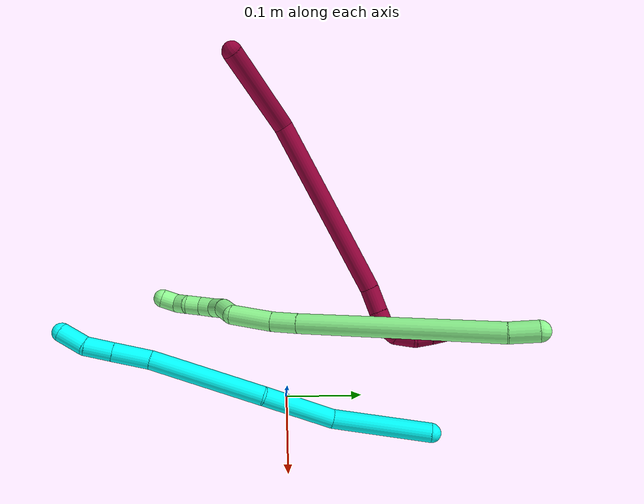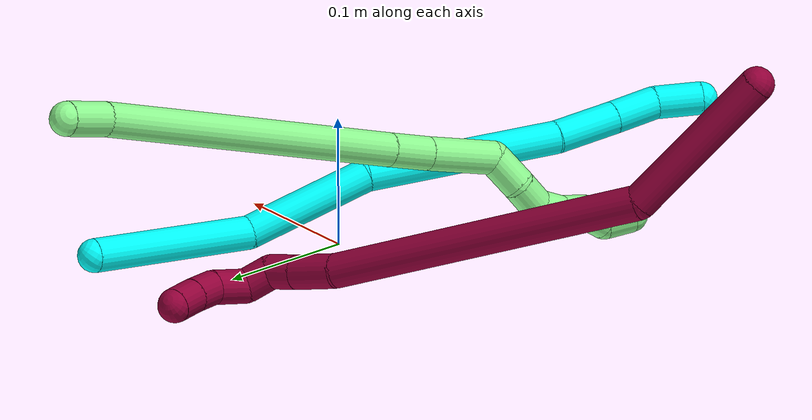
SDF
<sdf version="1.7">
 <world name="default">
  <model name="photoneo_s_sensor">
   <static>1</static>
   <pose>0 0 2 1.57079 1.57079 3.14159</pose>
   <link name="link">
    <inertial><mass>0.1</mass></inertial>
    <sensor name="sensor" type="depth">
     <update_rate>30</update_rate>
     <camera>
      <horizontal_fov>1.22</horizontal_fov>
      <image><width>1920</width><height>1200</height><format>B8G8R8</format></image>
      <clip><near>0.1</near><far>4</far></clip>
      <depth_camera><output>points</output></depth_camera>
     </camera>
     <plugin name="camera_plugin" filename="libgazebo_ros_depth_camera.so">
      <baseline>0.2</baseline>
      <alwaysOn>1</alwaysOn>
      <updateRate>0.0</updateRate>
      <cameraName>camera_ir</cameraName>
      <imageTopicName>/camera/color/image_raw</imageTopicName>
      <cameraInfoTopicName>/camera/color/camera_info</cameraInfoTopicName>
      <depthImageTopicName>/camera/depth/image_raw</depthImageTopicName>
      <depthImageCameraInfoTopicName>/camera/depth/camera_info</depthImageCameraInfoTopicName>
      <pointCloudTopicName>/camera/depth/points</pointCloudTopicName>
      <frameName>fr_optical</frameName>
      <pointCloudCutoff>0.1</pointCloudCutoff>
      <pointCloudCutoffMax>2.0</pointCloudCutoffMax>
      <distortionK1>0</distortionK1>
      <distortionK2>0</distortionK2>
      <distortionK3>0</distortionK3>
      <distortionT1>0</distortionT1>
      <distortionT2>0</distortionT2>
      <CxPrime>0</CxPrime>
      <Cx>0</Cx>
      <Cy>0</Cy>
      <focalLength>0</focalLength>
      <hackBaseline>0</hackBaseline>
     </plugin>
    </sensor>
   </link>
  </model>
  <model name="bin">
   <static>1</static>
   <link name="bottom">
    <collision name="collision-bottom">
     <pose>0 0 -0.01 0 -0 0</pose>
     <geometry><box><size>0.8 0.6 0.02</size></box></geometry>
     <surface>
      <friction><ode><mu>100</mu><mu2>100</mu2></ode></friction>
      <contact><collide_bitmask>65535</collide_bitmask></contact>
     </surface>
    </collision>
   </link>
   <link name="west_wall">
    <collision name="collision-west_wall">
     <pose>-0.41 0 0.1 0 -0 0</pose>
     <geometry><box><size>0.02 0.6 0.2</size></box></geometry>
     <surface>
      <friction><ode><mu>100</mu><mu2>100</mu2></ode></friction>
      <contact><collide_bitmask>65535</collide_bitmask></contact>
     </surface>
    </collision>
   </link>
   <link name="east_wall">
    <collision name="collision-east_wall">
     <pose>0.41 0 0.1 0 -0 0</pose>
     <geometry><box><size>0.02 0.6 0.2</size></box></geometry>
     <surface>
      <friction><ode><mu>100</mu><mu2>100</mu2></ode></friction>
      <contact><collide_bitmask>65535</collide_bitmask></contact>
     </surface>
    </collision>
   </link>
   <link name="south_wall">
    <collision name="collision-south_wall">
     <pose>0 -0.31 0.1 0 -0 0</pose>
     <geometry><box><size>0.8 0.02 0.2</size></box></geometry>
     <surface>
      <friction><ode><mu>100</mu><mu2>100</mu2></ode></friction>
      <contact><collide_bitmask>65535</collide_bitmask></contact>
     </surface>
    </collision>
   </link>
   <link name="north_wall">
    <collision name="collision-north_wall">
     <pose>0 0.31 0.1 0 -0 0</pose>
     <geometry><box><size>0.8 0.02 0.2</size></box></geometry>
     <surface>
      <friction><ode><mu>100</mu><mu2>100</mu2></ode></friction>
      <contact><collide_bitmask>65535</collide_bitmask></contact>
     </surface>
    </collision>
   </link>
  </model>
  <model name="3">
   <static>0</static>
   <link name="3">
    <collision name="collision-cylinder-e_1_1_4">
     <pose>-0.001508 -0.04319 -0.047124 2.39972 -0.023593 -0.060644</pose>
     <geometry><cylinder><radius>0.0125</radius><length>0.12788</length></cylinder></geometry>
     <surface>
      <friction><ode><mu>1.16</mu><mu2>1.16</mu2><slip1>0</slip1><slip2>0</slip2></ode></friction>
      <contact><ode><kp>1e+06</kp><kd>1</kd><max_vel>0</max_vel><min_depth>0.001</min_depth></ode></contact>
     </surface>
    </collision>
    <visual name="visual-cylinder-e_1_1_4">
     <pose>-0.001508 -0.04319 -0.047124 2.39972 -0.023593 -0.060644</pose>
     <geometry><cylinder><radius>0.0125</radius><length>0.12788</length></cylinder></geometry>
     <material><ambient>0.003922 1 0.996078 1</ambient></material>
    </visual>
    <collision name="collision-cylinder-e_2_4_5">
     <pose>-0.020908 -0.124012 -0.120136 2.1734 -0.373335 -0.689659</pose>
     <geometry><cylinder><radius>0.0125</radius><length>0.09811</length></cylinder></geometry>
     <surface>
      <friction><ode><mu>1.16</mu><mu2>1.16</mu2><slip1>0</slip1><slip2>0</slip2></ode></friction>
      <contact><ode><kp>1e+06</kp><kd>1</kd><max_vel>0</max_vel><min_depth>0.001</min_depth></ode></contact>
     </surface>
    </collision>
    <visual name="visual-cylinder-e_2_4_5">
     <pose>-0.020908 -0.124012 -0.120136 2.1734 -0.373335 -0.689659</pose>
     <geometry><cylinder><radius>0.0125</radius><length>0.09811</length></cylinder></geometry>
     <material><ambient>0.003922 1 0.996078 1</ambient></material>
    </visual>
    <collision name="collision-cylinder-e_3_5_6">
     <pose>-0.055623 -0.211516 -0.201354 2.408 -0.222125 -0.565034</pose>
     <geometry><cylinder><radius>0.0125</radius><length>0.152732</length></cylinder></geometry>
     <surface>
      <friction><ode><mu>1.16</mu><mu2>1.16</mu2><slip1>0</slip1><slip2>0</slip2></ode></friction>
      <contact><ode><kp>1e+06</kp><kd>1</kd><max_vel>0</max_vel><min_depth>0.001</min_depth></ode></contact>
     </surface>
    </collision>
    <visual name="visual-cylinder-e_3_5_6">
     <pose>-0.055623 -0.211516 -0.201354 2.408 -0.222125 -0.565034</pose>
     <geometry><cylinder><radius>0.0125</radius><length>0.152732</length></cylinder></geometry>
     <material><ambient>0.003922 1 0.996078 1</ambient></material>
    </visual>
    <collision name="collision-cylinder-e_4_6_7">
     <pose>-0.077056 -0.27995 -0.272232 2.26816 -0.188086 -0.398769</pose>
     <geometry><cylinder><radius>0.0125</radius><length>0.049294</length></cylinder></geometry>
     <surface>
      <friction><ode><mu>1.16</mu><mu2>1.16</mu2><slip1>0</slip1><slip2>0</slip2></ode></friction>
      <contact><ode><kp>1e+06</kp><kd>1</kd><max_vel>0</max_vel><min_depth>0.001</min_depth></ode></contact>
     </surface>
    </collision>
    <visual name="visual-cylinder-e_4_6_7">
     <pose>-0.077056 -0.27995 -0.272232 2.26816 -0.188086 -0.398769</pose>
     <geometry><cylinder><radius>0.0125</radius><length>0.049294</length></cylinder></geometry>
     <material><ambient>0.003922 1 0.996078 1</ambient></material>
    </visual>
    <collision name="collision-cylinder-e_5_7_8">
     <pose>-0.085343 -0.312244 -0.298955 2.2538 -0.204875 -0.425778</pose>
     <geometry><cylinder><radius>0.0125</radius><length>0.036168</length></cylinder></geometry>
     <surface>
      <friction><ode><mu>1.16</mu><mu2>1.16</mu2><slip1>0</slip1><slip2>0</slip2></ode></friction>
      <contact><ode><kp>1e+06</kp><kd>1</kd><max_vel>0</max_vel><min_depth>0.001</min_depth></ode></contact>
     </surface>
    </collision>
    <visual name="visual-cylinder-e_5_7_8">
     <pose>-0.085343 -0.312244 -0.298955 2.2538 -0.204875 -0.425778</pose>
     <geometry><cylinder><radius>0.0125</radius><length>0.036168</length></cylinder></geometry>
     <material><ambient>0.003922 1 0.996078 1</ambient></material>
    </visual>
    <collision name="collision-cylinder-e_6_8_2">
     <pose>-0.095515 -0.335126 -0.324089 2.5615 -0.370998 -1.12258</pose>
     <geometry><cylinder><radius>0.0125</radius><length>0.035816</length></cylinder></geometry>
     <surface>
      <friction><ode><mu>1.16</mu><mu2>1.16</mu2><slip1>0</slip1><slip2>0</slip2></ode></friction>
      <contact><ode><kp>1e+06</kp><kd>1</kd><max_vel>0</max_vel><min_depth>0.001</min_depth></ode></contact>
     </surface>
    </collision>
    <visual name="visual-cylinder-e_6_8_2">
     <pose>-0.095515 -0.335126 -0.324089 2.5615 -0.370998 -1.12258</pose>
     <geometry><cylinder><radius>0.0125</radius><length>0.035816</length></cylinder></geometry>
     <material><ambient>0.003922 1 0.996078 1</ambient></material>
    </visual>
    <collision name="collision-sphere-2">
     <pose>-0.102007 -0.344273 -0.338049 0 -0 0</pose>
     <geometry><sphere><radius>0.0125</radius></sphere></geometry>
     <surface>
      <friction><ode><mu>1.16</mu><mu2>1.16</mu2><slip1>0</slip1><slip2>0</slip2></ode></friction>
      <contact><ode><kp>1e+06</kp><kd>1</kd><max_vel>0</max_vel><min_depth>0.001</min_depth></ode></contact>
     </surface>
    </collision>
    <visual name="visual-sphere-2">
     <pose>-0.102007 -0.344273 -0.338049 0 -0 0</pose>
     <geometry><sphere><radius>0.0125</radius></sphere></geometry>
     <material><ambient>0.003922 1 0.996078 1</ambient></material>
    </visual>
    <collision name="collision-sphere-4">
     <pose>-0.003017 -0.086381 -0.094247 0 -0 0</pose>
     <geometry><sphere><radius>0.0125</radius></sphere></geometry>
     <surface>
      <friction><ode><mu>1.16</mu><mu2>1.16</mu2><slip1>0</slip1><slip2>0</slip2></ode></friction>
      <contact><ode><kp>1e+06</kp><kd>1</kd><max_vel>0</max_vel><min_depth>0.001</min_depth></ode></contact>
     </surface>
    </collision>
    <visual name="visual-sphere-4">
     <pose>-0.003017 -0.086381 -0.094247 0 -0 0</pose>
     <geometry><sphere><radius>0.0125</radius></sphere></geometry>
     <material><ambient>0.003922 1 0.996078 1</ambient></material>
    </visual>
    <collision name="collision-sphere-1">
     <geometry><sphere><radius>0.0125</radius></sphere></geometry>
     <surface>
      <friction><ode><mu>1.16</mu><mu2>1.16</mu2><slip1>0</slip1><slip2>0</slip2></ode></friction>
      <contact><ode><kp>1e+06</kp><kd>1</kd><max_vel>0</max_vel><min_depth>0.001</min_depth></ode></contact>
     </surface>
    </collision>
    <visual name="visual-sphere-1">
     <geometry><sphere><radius>0.0125</radius></sphere></geometry>
     <material><ambient>0.003922 1 0.996078 1</ambient></material>
    </visual>
    <collision name="collision-sphere-8">
     <pose>-0.089022 -0.325978 -0.31013 0 -0 0</pose>
     <geometry><sphere><radius>0.0125</radius></sphere></geometry>
     <surface>
      <friction><ode><mu>1.16</mu><mu2>1.16</mu2><slip1>0</slip1><slip2>0</slip2></ode></friction>
      <contact><ode><kp>1e+06</kp><kd>1</kd><max_vel>0</max_vel><min_depth>0.001</min_depth></ode></contact>
     </surface>
    </collision>
    <visual name="visual-sphere-8">
     <pose>-0.089022 -0.325978 -0.31013 0 -0 0</pose>
     <geometry><sphere><radius>0.0125</radius></sphere></geometry>
     <material><ambient>0.003922 1 0.996078 1</ambient></material>
    </visual>
    <collision name="collision-sphere-5">
     <pose>-0.0388 -0.161642 -0.146025 0 -0 0</pose>
     <geometry><sphere><radius>0.0125</radius></sphere></geometry>
     <surface>
      <friction><ode><mu>1.16</mu><mu2>1.16</mu2><slip1>0</slip1><slip2>0</slip2></ode></friction>
      <contact><ode><kp>1e+06</kp><kd>1</kd><max_vel>0</max_vel><min_depth>0.001</min_depth></ode></contact>
     </surface>
    </collision>
    <visual name="visual-sphere-5">
     <pose>-0.0388 -0.161642 -0.146025 0 -0 0</pose>
     <geometry><sphere><radius>0.0125</radius></sphere></geometry>
     <material><ambient>0.003922 1 0.996078 1</ambient></material>
    </visual>
    <collision name="collision-sphere-6">
     <pose>-0.072447 -0.261391 -0.256683 0 -0 0</pose>
     <geometry><sphere><radius>0.0125</radius></sphere></geometry>
     <surface>
      <friction><ode><mu>1.16</mu><mu2>1.16</mu2><slip1>0</slip1><slip2>0</slip2></ode></friction>
      <contact><ode><kp>1e+06</kp><kd>1</kd><max_vel>0</max_vel><min_depth>0.001</min_depth></ode></contact>
     </surface>
    </collision>
    <visual name="visual-sphere-6">
     <pose>-0.072447 -0.261391 -0.256683 0 -0 0</pose>
     <geometry><sphere><radius>0.0125</radius></sphere></geometry>
     <material><ambient>0.003922 1 0.996078 1</ambient></material>
    </visual>
    <collision name="collision-sphere-7">
     <pose>-0.081664 -0.29851 -0.287781 0 -0 0</pose>
     <geometry><sphere><radius>0.0125</radius></sphere></geometry>
     <surface>
      <friction><ode><mu>1.16</mu><mu2>1.16</mu2><slip1>0</slip1><slip2>0</slip2></ode></friction>
      <contact><ode><kp>1e+06</kp><kd>1</kd><max_vel>0</max_vel><min_depth>0.001</min_depth></ode></contact>
     </surface>
    </collision>
    <visual name="visual-sphere-7">
     <pose>-0.081664 -0.29851 -0.287781 0 -0 0</pose>
     <geometry><sphere><radius>0.0125</radius></sphere></geometry>
     <material><ambient>0.003922 1 0.996078 1</ambient></material>
    </visual>
    <inertial>
     <pose>-0.042091 -0.174182 -0.168811 0 -0 0</pose>
     <mass>0.5</mass>
     <inertia>
      <ixx>0.000268</ixx>
      <ixy>0</ixy>
      <ixz>0</ixz>
      <iyy>-0.000584</iyy>
      <iyz>0</iyz>
      <izz>0.000478</izz>
     </inertia>
    </inertial>
   </link>
   <pose>0.052879 0.185077 0.025505 -0.705129 0.704046 -0.065897</pose>
  </model>
  <model name="8">
   <static>0</static>
   <link name="8">
    <collision name="collision-cylinder-e_1_1_4">
     <pose>0.035937 0.044329 0.014266 -1.25944 0.657243 -0.487077</pose>
     <geometry><cylinder><radius>0.0125</radius><length>0.117644</length></cylinder></geometry>
     <surface>
      <friction><ode><mu>1.16</mu><mu2>1.16</mu2><slip1>0</slip1><slip2>0</slip2></ode></friction>
      <contact><ode><kp>1e+06</kp><kd>1</kd><max_vel>0</max_vel><min_depth>0.001</min_depth></ode></contact>
     </surface>
    </collision>
    <visual name="visual-cylinder-e_1_1_4">
     <pose>0.035937 0.044329 0.014266 -1.25944 0.657243 -0.487077</pose>
     <geometry><cylinder><radius>0.0125</radius><length>0.117644</length></cylinder></geometry>
     <material><ambient>0.584314 0 0.227451 1</ambient></material>
    </visual>
    <collision name="collision-cylinder-e_2_4_5">
     <pose>0.087396 0.206773 0.044294 -1.43814 0.129537 -0.113437</pose>
     <geometry><cylinder><radius>0.0125</radius><length>0.240337</length></cylinder></geometry>
     <surface>
      <friction><ode><mu>1.16</mu><mu2>1.16</mu2><slip1>0</slip1><slip2>0</slip2></ode></friction>
      <contact><ode><kp>1e+06</kp><kd>1</kd><max_vel>0</max_vel><min_depth>0.001</min_depth></ode></contact>
     </surface>
    </collision>
    <visual name="visual-cylinder-e_2_4_5">
     <pose>0.087396 0.206773 0.044294 -1.43814 0.129537 -0.113437</pose>
     <geometry><cylinder><radius>0.0125</radius><length>0.240337</length></cylinder></geometry>
     <material><ambient>0.584314 0 0.227451 1</ambient></material>
    </visual>
    <collision name="collision-cylinder-e_3_5_6">
     <pose>0.101856 0.341334 0.062881 -1.40063 -0.063569 0.053583</pose>
     <geometry><cylinder><radius>0.0125</radius><length>0.033442</length></cylinder></geometry>
     <surface>
      <friction><ode><mu>1.16</mu><mu2>1.16</mu2><slip1>0</slip1><slip2>0</slip2></ode></friction>
      <contact><ode><kp>1e+06</kp><kd>1</kd><max_vel>0</max_vel><min_depth>0.001</min_depth></ode></contact>
     </surface>
    </collision>
    <visual name="visual-cylinder-e_3_5_6">
     <pose>0.101856 0.341334 0.062881 -1.40063 -0.063569 0.053583</pose>
     <geometry><cylinder><radius>0.0125</radius><length>0.033442</length></cylinder></geometry>
     <material><ambient>0.584314 0 0.227451 1</ambient></material>
    </visual>
    <collision name="collision-cylinder-e_4_6_7">
     <pose>0.099753 0.367943 0.067025 -1.44183 -0.101251 0.088985</pose>
     <geometry><cylinder><radius>0.0125</radius><length>0.020603</length></cylinder></geometry>
     <surface>
      <friction><ode><mu>1.16</mu><mu2>1.16</mu2><slip1>0</slip1><slip2>0</slip2></ode></friction>
      <contact><ode><kp>1e+06</kp><kd>1</kd><max_vel>0</max_vel><min_depth>0.001</min_depth></ode></contact>
     </surface>
    </collision>
    <visual name="visual-cylinder-e_4_6_7">
     <pose>0.099753 0.367943 0.067025 -1.44183 -0.101251 0.088985</pose>
     <geometry><cylinder><radius>0.0125</radius><length>0.020603</length></cylinder></geometry>
     <material><ambient>0.584314 0 0.227451 1</ambient></material>
    </visual>
    <collision name="collision-cylinder-e_5_7_8">
     <pose>0.104036 0.387141 0.067831 -1.62743 0.531831 -0.561275</pose>
     <geometry><cylinder><radius>0.0125</radius><length>0.020997</length></cylinder></geometry>
     <surface>
      <friction><ode><mu>1.16</mu><mu2>1.16</mu2><slip1>0</slip1><slip2>0</slip2></ode></friction>
      <contact><ode><kp>1e+06</kp><kd>1</kd><max_vel>0</max_vel><min_depth>0.001</min_depth></ode></contact>
     </surface>
    </collision>
    <visual name="visual-cylinder-e_5_7_8">
     <pose>0.104036 0.387141 0.067831 -1.62743 0.531831 -0.561275</pose>
     <geometry><cylinder><radius>0.0125</radius><length>0.020997</length></cylinder></geometry>
     <material><ambient>0.584314 0 0.227451 1</ambient></material>
    </visual>
    <collision name="collision-cylinder-e_6_8_9">
     <pose>0.11296 0.404493 0.057621 -2.43266 0.274618 -0.714661</pose>
     <geometry><cylinder><radius>0.0125</radius><length>0.026549</length></cylinder></geometry>
     <surface>
      <friction><ode><mu>1.16</mu><mu2>1.16</mu2><slip1>0</slip1><slip2>0</slip2></ode></friction>
      <contact><ode><kp>1e+06</kp><kd>1</kd><max_vel>0</max_vel><min_depth>0.001</min_depth></ode></contact>
     </surface>
    </collision>
    <visual name="visual-cylinder-e_6_8_9">
     <pose>0.11296 0.404493 0.057621 -2.43266 0.274618 -0.714661</pose>
     <geometry><cylinder><radius>0.0125</radius><length>0.026549</length></cylinder></geometry>
     <material><ambient>0.584314 0 0.227451 1</ambient></material>
    </visual>
    <collision name="collision-cylinder-e_7_9_10">
     <pose>0.122155 0.416412 0.040299 -2.70029 0.585918 -1.86278</pose>
     <geometry><cylinder><radius>0.0125</radius><length>0.020237</length></cylinder></geometry>
     <surface>
      <friction><ode><mu>1.16</mu><mu2>1.16</mu2><slip1>0</slip1><slip2>0</slip2></ode></friction>
      <contact><ode><kp>1e+06</kp><kd>1</kd><max_vel>0</max_vel><min_depth>0.001</min_depth></ode></contact>
     </surface>
    </collision>
    <visual name="visual-cylinder-e_7_9_10">
     <pose>0.122155 0.416412 0.040299 -2.70029 0.585918 -1.86278</pose>
     <geometry><cylinder><radius>0.0125</radius><length>0.020237</length></cylinder></geometry>
     <material><ambient>0.584314 0 0.227451 1</ambient></material>
    </visual>
    <collision name="collision-cylinder-e_8_10_2">
     <pose>0.133849 0.423194 0.025287 -2.73511 0.648764 -2.04193</pose>
     <geometry><cylinder><radius>0.0125</radius><length>0.020191</length></cylinder></geometry>
     <surface>
      <friction><ode><mu>1.16</mu><mu2>1.16</mu2><slip1>0</slip1><slip2>0</slip2></ode></friction>
      <contact><ode><kp>1e+06</kp><kd>1</kd><max_vel>0</max_vel><min_depth>0.001</min_depth></ode></contact>
     </surface>
    </collision>
    <visual name="visual-cylinder-e_8_10_2">
     <pose>0.133849 0.423194 0.025287 -2.73511 0.648764 -2.04193</pose>
     <geometry><cylinder><radius>0.0125</radius><length>0.020191</length></cylinder></geometry>
     <material><ambient>0.584314 0 0.227451 1</ambient></material>
    </visual>
    <collision name="collision-sphere-2">
     <pose>0.139949 0.426374 0.017898 0 -0 0</pose>
     <geometry><sphere><radius>0.0125</radius></sphere></geometry>
     <surface>
      <friction><ode><mu>1.16</mu><mu2>1.16</mu2><slip1>0</slip1><slip2>0</slip2></ode></friction>
      <contact><ode><kp>1e+06</kp><kd>1</kd><max_vel>0</max_vel><min_depth>0.001</min_depth></ode></contact>
     </surface>
    </collision>
    <visual name="visual-sphere-2">
     <pose>0.139949 0.426374 0.017898 0 -0 0</pose>
     <geometry><sphere><radius>0.0125</radius></sphere></geometry>
     <material><ambient>0.584314 0 0.227451 1</ambient></material>
    </visual>
    <collision name="collision-sphere-10">
     <pose>0.12775 0.420013 0.032676 0 -0 0</pose>
     <geometry><sphere><radius>0.0125</radius></sphere></geometry>
     <surface>
      <friction><ode><mu>1.16</mu><mu2>1.16</mu2><slip1>0</slip1><slip2>0</slip2></ode></friction>
      <contact><ode><kp>1e+06</kp><kd>1</kd><max_vel>0</max_vel><min_depth>0.001</min_depth></ode></contact>
     </surface>
    </collision>
    <visual name="visual-sphere-10">
     <pose>0.12775 0.420013 0.032676 0 -0 0</pose>
     <geometry><sphere><radius>0.0125</radius></sphere></geometry>
     <material><ambient>0.584314 0 0.227451 1</ambient></material>
    </visual>
    <collision name="collision-sphere-9">
     <pose>0.116559 0.412811 0.047922 0 -0 0</pose>
     <geometry><sphere><radius>0.0125</radius></sphere></geometry>
     <surface>
      <friction><ode><mu>1.16</mu><mu2>1.16</mu2><slip1>0</slip1><slip2>0</slip2></ode></friction>
      <contact><ode><kp>1e+06</kp><kd>1</kd><max_vel>0</max_vel><min_depth>0.001</min_depth></ode></contact>
     </surface>
    </collision>
    <visual name="visual-sphere-9">
     <pose>0.116559 0.412811 0.047922 0 -0 0</pose>
     <geometry><sphere><radius>0.0125</radius></sphere></geometry>
     <material><ambient>0.584314 0 0.227451 1</ambient></material>
    </visual>
    <collision name="collision-sphere-4">
     <pose>0.071873 0.088658 0.028533 0 -0 0</pose>
     <geometry><sphere><radius>0.0125</radius></sphere></geometry>
     <surface>
      <friction><ode><mu>1.16</mu><mu2>1.16</mu2><slip1>0</slip1><slip2>0</slip2></ode></friction>
      <contact><ode><kp>1e+06</kp><kd>1</kd><max_vel>0</max_vel><min_depth>0.001</min_depth></ode></contact>
     </surface>
    </collision>
    <visual name="visual-sphere-4">
     <pose>0.071873 0.088658 0.028533 0 -0 0</pose>
     <geometry><sphere><radius>0.0125</radius></sphere></geometry>
     <material><ambient>0.584314 0 0.227451 1</ambient></material>
    </visual>
    <collision name="collision-sphere-1">
     <geometry><sphere><radius>0.0125</radius></sphere></geometry>
     <surface>
      <friction><ode><mu>1.16</mu><mu2>1.16</mu2><slip1>0</slip1><slip2>0</slip2></ode></friction>
      <contact><ode><kp>1e+06</kp><kd>1</kd><max_vel>0</max_vel><min_depth>0.001</min_depth></ode></contact>
     </surface>
    </collision>
    <visual name="visual-sphere-1">
     <geometry><sphere><radius>0.0125</radius></sphere></geometry>
     <material><ambient>0.584314 0 0.227451 1</ambient></material>
    </visual>
    <collision name="collision-sphere-8">
     <pose>0.10936 0.396175 0.067319 0 -0 0</pose>
     <geometry><sphere><radius>0.0125</radius></sphere></geometry>
     <surface>
      <friction><ode><mu>1.16</mu><mu2>1.16</mu2><slip1>0</slip1><slip2>0</slip2></ode></friction>
      <contact><ode><kp>1e+06</kp><kd>1</kd><max_vel>0</max_vel><min_depth>0.001</min_depth></ode></contact>
     </surface>
    </collision>
    <visual name="visual-sphere-8">
     <pose>0.10936 0.396175 0.067319 0 -0 0</pose>
     <geometry><sphere><radius>0.0125</radius></sphere></geometry>
     <material><ambient>0.584314 0 0.227451 1</ambient></material>
    </visual>
    <collision name="collision-sphere-5">
     <pose>0.102919 0.324887 0.060056 0 -0 0</pose>
     <geometry><sphere><radius>0.0125</radius></sphere></geometry>
     <surface>
      <friction><ode><mu>1.16</mu><mu2>1.16</mu2><slip1>0</slip1><slip2>0</slip2></ode></friction>
      <contact><ode><kp>1e+06</kp><kd>1</kd><max_vel>0</max_vel><min_depth>0.001</min_depth></ode></contact>
     </surface>
    </collision>
    <visual name="visual-sphere-5">
     <pose>0.102919 0.324887 0.060056 0 -0 0</pose>
     <geometry><sphere><radius>0.0125</radius></sphere></geometry>
     <material><ambient>0.584314 0 0.227451 1</ambient></material>
    </visual>
    <collision name="collision-sphere-6">
     <pose>0.100794 0.35778 0.065707 0 -0 0</pose>
     <geometry><sphere><radius>0.0125</radius></sphere></geometry>
     <surface>
      <friction><ode><mu>1.16</mu><mu2>1.16</mu2><slip1>0</slip1><slip2>0</slip2></ode></friction>
      <contact><ode><kp>1e+06</kp><kd>1</kd><max_vel>0</max_vel><min_depth>0.001</min_depth></ode></contact>
     </surface>
    </collision>
    <visual name="visual-sphere-6">
     <pose>0.100794 0.35778 0.065707 0 -0 0</pose>
     <geometry><sphere><radius>0.0125</radius></sphere></geometry>
     <material><ambient>0.584314 0 0.227451 1</ambient></material>
    </visual>
    <collision name="collision-sphere-7">
     <pose>0.098712 0.378107 0.068344 0 -0 0</pose>
     <geometry><sphere><radius>0.0125</radius></sphere></geometry>
     <surface>
      <friction><ode><mu>1.16</mu><mu2>1.16</mu2><slip1>0</slip1><slip2>0</slip2></ode></friction>
      <contact><ode><kp>1e+06</kp><kd>1</kd><max_vel>0</max_vel><min_depth>0.001</min_depth></ode></contact>
     </surface>
    </collision>
    <visual name="visual-sphere-7">
     <pose>0.098712 0.378107 0.068344 0 -0 0</pose>
     <geometry><sphere><radius>0.0125</radius></sphere></geometry>
     <material><ambient>0.584314 0 0.227451 1</ambient></material>
    </visual>
    <inertial>
     <pose>0.082103 0.21949 0.040176 0 -0 0</pose>
     <mass>0.5</mass>
     <inertia><ixx>0.001079</ixx><ixy>0</ixy><ixz>0</ixz><iyy>9.4e-05</iyy><iyz>0</iyz><izz>-0.0015</izz></inertia>
    </inertial>
   </link>
   <pose>-0.379004 -0.059191 0.229427 -2.87241 0.825303 2.30234</pose>
  </model>
  <model name="13">
   <static>0</static>
   <link name="13">
    <collision name="collision-cylinder-e_1_1_4">
     <pose>-0.008127 -0.013269 0.006244 1.13101 -0.506026 -0.325279</pose>
     <geometry><cylinder><radius>0.0125</radius><length>0.033532</length></cylinder></geometry>
     <surface>
      <friction><ode><mu>1.16</mu><mu2>1.16</mu2><slip1>0</slip1><slip2>0</slip2></ode></friction>
      <contact><ode><kp>1e+06</kp><kd>1</kd><max_vel>0</max_vel><min_depth>0.001</min_depth></ode></contact>
     </surface>
    </collision>
    <visual name="visual-cylinder-e_1_1_4">
     <pose>-0.008127 -0.013269 0.006244 1.13101 -0.506026 -0.325279</pose>
     <geometry><cylinder><radius>0.0125</radius><length>0.033532</length></cylinder></geometry>
     <material><ambient>0.564706 0.984314 0.572549 1</ambient></material>
    </visual>
    <collision name="collision-cylinder-e_2_4_5">
     <pose>-0.064894 -0.131937 0.050108 1.22795 -0.410004 -0.291039</pose>
     <geometry><cylinder><radius>0.0125</radius><length>0.244049</length></cylinder></geometry>
     <surface>
      <friction><ode><mu>1.16</mu><mu2>1.16</mu2><slip1>0</slip1><slip2>0</slip2></ode></friction>
      <contact><ode><kp>1e+06</kp><kd>1</kd><max_vel>0</max_vel><min_depth>0.001</min_depth></ode></contact>
     </surface>
    </collision>
    <visual name="visual-cylinder-e_2_4_5">
     <pose>-0.064894 -0.131937 0.050108 1.22795 -0.410004 -0.291039</pose>
     <geometry><cylinder><radius>0.0125</radius><length>0.244049</length></cylinder></geometry>
     <material><ambient>0.564706 0.984314 0.572549 1</ambient></material>
    </visual>
    <collision name="collision-cylinder-e_3_5_6">
     <pose>-0.12026 -0.251984 0.092467 1.25795 -0.411858 -0.301647</pose>
     <geometry><cylinder><radius>0.0125</radius><length>0.033602</length></cylinder></geometry>
     <surface>
      <friction><ode><mu>1.16</mu><mu2>1.16</mu2><slip1>0</slip1><slip2>0</slip2></ode></friction>
      <contact><ode><kp>1e+06</kp><kd>1</kd><max_vel>0</max_vel><min_depth>0.001</min_depth></ode></contact>
     </surface>
    </collision>
    <visual name="visual-cylinder-e_3_5_6">
     <pose>-0.12026 -0.251984 0.092467 1.25795 -0.411858 -0.301647</pose>
     <geometry><cylinder><radius>0.0125</radius><length>0.033602</length></cylinder></geometry>
     <material><ambient>0.564706 0.984314 0.572549 1</ambient></material>
    </visual>
    <collision name="collision-cylinder-e_4_6_7">
     <pose>-0.138147 -0.291226 0.102261 1.36806 -0.418316 -0.342739</pose>
     <geometry><cylinder><radius>0.0125</radius><length>0.054955</length></cylinder></geometry>
     <surface>
      <friction><ode><mu>1.16</mu><mu2>1.16</mu2><slip1>0</slip1><slip2>0</slip2></ode></friction>
      <contact><ode><kp>1e+06</kp><kd>1</kd><max_vel>0</max_vel><min_depth>0.001</min_depth></ode></contact>
     </surface>
    </collision>
    <visual name="visual-cylinder-e_4_6_7">
     <pose>-0.138147 -0.291226 0.102261 1.36806 -0.418316 -0.342739</pose>
     <geometry><cylinder><radius>0.0125</radius><length>0.054955</length></cylinder></geometry>
     <material><ambient>0.564706 0.984314 0.572549 1</ambient></material>
    </visual>
    <collision name="collision-cylinder-e_5_7_8">
     <pose>-0.144645 -0.328498 0.109853 1.37329 0.346205 0.284718</pose>
     <geometry><cylinder><radius>0.0125</radius><length>0.027489</length></cylinder></geometry>
     <surface>
      <friction><ode><mu>1.16</mu><mu2>1.16</mu2><slip1>0</slip1><slip2>0</slip2></ode></friction>
      <contact><ode><kp>1e+06</kp><kd>1</kd><max_vel>0</max_vel><min_depth>0.001</min_depth></ode></contact>
     </surface>
    </collision>
    <visual name="visual-cylinder-e_5_7_8">
     <pose>-0.144645 -0.328498 0.109853 1.37329 0.346205 0.284718</pose>
     <geometry><cylinder><radius>0.0125</radius><length>0.027489</length></cylinder></geometry>
     <material><ambient>0.564706 0.984314 0.572549 1</ambient></material>
    </visual>
    <collision name="collision-cylinder-e_6_8_9">
     <pose>-0.137434 -0.351449 0.117518 1.10787 0.218358 0.135394</pose>
     <geometry><cylinder><radius>0.0125</radius><length>0.023523</length></cylinder></geometry>
     <surface>
      <friction><ode><mu>1.16</mu><mu2>1.16</mu2><slip1>0</slip1><slip2>0</slip2></ode></friction>
      <contact><ode><kp>1e+06</kp><kd>1</kd><max_vel>0</max_vel><min_depth>0.001</min_depth></ode></contact>
     </surface>
    </collision>
    <visual name="visual-cylinder-e_6_8_9">
     <pose>-0.137434 -0.351449 0.117518 1.10787 0.218358 0.135394</pose>
     <geometry><cylinder><radius>0.0125</radius><length>0.023523</length></cylinder></geometry>
     <material><ambient>0.564706 0.984314 0.572549 1</ambient></material>
    </visual>
    <collision name="collision-cylinder-e_7_9_10">
     <pose>-0.137588 -0.371461 0.12557 1.27904 -0.259802 -0.193726</pose>
     <geometry><cylinder><radius>0.0125</radius><length>0.021042</length></cylinder></geometry>
     <surface>
      <friction><ode><mu>1.16</mu><mu2>1.16</mu2><slip1>0</slip1><slip2>0</slip2></ode></friction>
      <contact><ode><kp>1e+06</kp><kd>1</kd><max_vel>0</max_vel><min_depth>0.001</min_depth></ode></contact>
     </surface>
    </collision>
    <visual name="visual-cylinder-e_7_9_10">
     <pose>-0.137588 -0.371461 0.12557 1.27904 -0.259802 -0.193726</pose>
     <geometry><cylinder><radius>0.0125</radius><length>0.021042</length></cylinder></geometry>
     <material><ambient>0.564706 0.984314 0.572549 1</ambient></material>
    </visual>
    <collision name="collision-cylinder-e_8_10_11">
     <pose>-0.145207 -0.389707 0.130508 1.33845 -0.512241 -0.408501</pose>
     <geometry><cylinder><radius>0.0125</radius><length>0.02006</length></cylinder></geometry>
     <surface>
      <friction><ode><mu>1.16</mu><mu2>1.16</mu2><slip1>0</slip1><slip2>0</slip2></ode></friction>
      <contact><ode><kp>1e+06</kp><kd>1</kd><max_vel>0</max_vel><min_depth>0.001</min_depth></ode></contact>
     </surface>
    </collision>
    <visual name="visual-cylinder-e_8_10_11">
     <pose>-0.145207 -0.389707 0.130508 1.33845 -0.512241 -0.408501</pose>
     <geometry><cylinder><radius>0.0125</radius><length>0.02006</length></cylinder></geometry>
     <material><ambient>0.564706 0.984314 0.572549 1</ambient></material>
    </visual>
    <collision name="collision-cylinder-e_9_11_12">
     <pose>-0.150927 -0.40769 0.136009 1.21809 -0.079473 -0.055447</pose>
     <geometry><cylinder><radius>0.0125</radius><length>0.020258</length></cylinder></geometry>
     <surface>
      <friction><ode><mu>1.16</mu><mu2>1.16</mu2><slip1>0</slip1><slip2>0</slip2></ode></friction>
      <contact><ode><kp>1e+06</kp><kd>1</kd><max_vel>0</max_vel><min_depth>0.001</min_depth></ode></contact>
     </surface>
    </collision>
    <visual name="visual-cylinder-e_9_11_12">
     <pose>-0.150927 -0.40769 0.136009 1.21809 -0.079473 -0.055447</pose>
     <geometry><cylinder><radius>0.0125</radius><length>0.020258</length></cylinder></geometry>
     <material><ambient>0.564706 0.984314 0.572549 1</ambient></material>
    </visual>
    <collision name="collision-cylinder-e_10_12_2">
     <pose>-0.158267 -0.425647 0.138597 1.67639 -0.653778 -0.720848</pose>
     <geometry><cylinder><radius>0.0125</radius><length>0.021491</length></cylinder></geometry>
     <surface>
      <friction><ode><mu>1.16</mu><mu2>1.16</mu2><slip1>0</slip1><slip2>0</slip2></ode></friction>
      <contact><ode><kp>1e+06</kp><kd>1</kd><max_vel>0</max_vel><min_depth>0.001</min_depth></ode></contact>
     </surface>
    </collision>
    <visual name="visual-cylinder-e_10_12_2">
     <pose>-0.158267 -0.425647 0.138597 1.67639 -0.653778 -0.720848</pose>
     <geometry><cylinder><radius>0.0125</radius><length>0.021491</length></cylinder></geometry>
     <material><ambient>0.564706 0.984314 0.572549 1</ambient></material>
    </visual>
    <collision name="collision-sphere-2">
     <pose>-0.164802 -0.434129 0.137698 0 -0 0</pose>
     <geometry><sphere><radius>0.0125</radius></sphere></geometry>
     <surface>
      <friction><ode><mu>1.16</mu><mu2>1.16</mu2><slip1>0</slip1><slip2>0</slip2></ode></friction>
      <contact><ode><kp>1e+06</kp><kd>1</kd><max_vel>0</max_vel><min_depth>0.001</min_depth></ode></contact>
     </surface>
    </collision>
    <visual name="visual-sphere-2">
     <pose>-0.164802 -0.434129 0.137698 0 -0 0</pose>
     <geometry><sphere><radius>0.0125</radius></sphere></geometry>
     <material><ambient>0.564706 0.984314 0.572549 1</ambient></material>
    </visual>
    <collision name="collision-sphere-12">
     <pose>-0.151732 -0.417165 0.139496 0 -0 0</pose>
     <geometry><sphere><radius>0.0125</radius></sphere></geometry>
     <surface>
      <friction><ode><mu>1.16</mu><mu2>1.16</mu2><slip1>0</slip1><slip2>0</slip2></ode></friction>
      <contact><ode><kp>1e+06</kp><kd>1</kd><max_vel>0</max_vel><min_depth>0.001</min_depth></ode></contact>
     </surface>
    </collision>
    <visual name="visual-sphere-12">
     <pose>-0.151732 -0.417165 0.139496 0 -0 0</pose>
     <geometry><sphere><radius>0.0125</radius></sphere></geometry>
     <material><ambient>0.564706 0.984314 0.572549 1</ambient></material>
    </visual>
    <collision name="collision-sphere-11">
     <pose>-0.150123 -0.398215 0.132521 0 -0 0</pose>
     <geometry><sphere><radius>0.0125</radius></sphere></geometry>
     <surface>
      <friction><ode><mu>1.16</mu><mu2>1.16</mu2><slip1>0</slip1><slip2>0</slip2></ode></friction>
      <contact><ode><kp>1e+06</kp><kd>1</kd><max_vel>0</max_vel><min_depth>0.001</min_depth></ode></contact>
     </surface>
    </collision>
    <visual name="visual-sphere-11">
     <pose>-0.150123 -0.398215 0.132521 0 -0 0</pose>
     <geometry><sphere><radius>0.0125</radius></sphere></geometry>
     <material><ambient>0.564706 0.984314 0.572549 1</ambient></material>
    </visual>
    <collision name="collision-sphere-10">
     <pose>-0.140291 -0.381199 0.128495 0 -0 0</pose>
     <geometry><sphere><radius>0.0125</radius></sphere></geometry>
     <surface>
      <friction><ode><mu>1.16</mu><mu2>1.16</mu2><slip1>0</slip1><slip2>0</slip2></ode></friction>
      <contact><ode><kp>1e+06</kp><kd>1</kd><max_vel>0</max_vel><min_depth>0.001</min_depth></ode></contact>
     </surface>
    </collision>
    <visual name="visual-sphere-10">
     <pose>-0.140291 -0.381199 0.128495 0 -0 0</pose>
     <geometry><sphere><radius>0.0125</radius></sphere></geometry>
     <material><ambient>0.564706 0.984314 0.572549 1</ambient></material>
    </visual>
    <collision name="collision-sphere-9">
     <pose>-0.134886 -0.361723 0.122645 0 -0 0</pose>
     <geometry><sphere><radius>0.0125</radius></sphere></geometry>
     <surface>
      <friction><ode><mu>1.16</mu><mu2>1.16</mu2><slip1>0</slip1><slip2>0</slip2></ode></friction>
      <contact><ode><kp>1e+06</kp><kd>1</kd><max_vel>0</max_vel><min_depth>0.001</min_depth></ode></contact>
     </surface>
    </collision>
    <visual name="visual-sphere-9">
     <pose>-0.134886 -0.361723 0.122645 0 -0 0</pose>
     <geometry><sphere><radius>0.0125</radius></sphere></geometry>
     <material><ambient>0.564706 0.984314 0.572549 1</ambient></material>
    </visual>
    <collision name="collision-sphere-4">
     <pose>-0.016253 -0.026539 0.012487 0 -0 0</pose>
     <geometry><sphere><radius>0.0125</radius></sphere></geometry>
     <surface>
      <friction><ode><mu>1.16</mu><mu2>1.16</mu2><slip1>0</slip1><slip2>0</slip2></ode></friction>
      <contact><ode><kp>1e+06</kp><kd>1</kd><max_vel>0</max_vel><min_depth>0.001</min_depth></ode></contact>
     </surface>
    </collision>
    <visual name="visual-sphere-4">
     <pose>-0.016253 -0.026539 0.012487 0 -0 0</pose>
     <geometry><sphere><radius>0.0125</radius></sphere></geometry>
     <material><ambient>0.564706 0.984314 0.572549 1</ambient></material>
    </visual>
    <collision name="collision-sphere-1">
     <geometry><sphere><radius>0.0125</radius></sphere></geometry>
     <surface>
      <friction><ode><mu>1.16</mu><mu2>1.16</mu2><slip1>0</slip1><slip2>0</slip2></ode></friction>
      <contact><ode><kp>1e+06</kp><kd>1</kd><max_vel>0</max_vel><min_depth>0.001</min_depth></ode></contact>
     </surface>
    </collision>
    <visual name="visual-sphere-1">
     <geometry><sphere><radius>0.0125</radius></sphere></geometry>
     <material><ambient>0.564706 0.984314 0.572549 1</ambient></material>
    </visual>
    <collision name="collision-sphere-8">
     <pose>-0.139981 -0.341176 0.11239 0 -0 0</pose>
     <geometry><sphere><radius>0.0125</radius></sphere></geometry>
     <surface>
      <friction><ode><mu>1.16</mu><mu2>1.16</mu2><slip1>0</slip1><slip2>0</slip2></ode></friction>
      <contact><ode><kp>1e+06</kp><kd>1</kd><max_vel>0</max_vel><min_depth>0.001</min_depth></ode></contact>
     </surface>
    </collision>
    <visual name="visual-sphere-8">
     <pose>-0.139981 -0.341176 0.11239 0 -0 0</pose>
     <geometry><sphere><radius>0.0125</radius></sphere></geometry>
     <material><ambient>0.564706 0.984314 0.572549 1</ambient></material>
    </visual>
    <collision name="collision-sphere-5">
     <pose>-0.113534 -0.237335 0.087728 0 -0 0</pose>
     <geometry><sphere><radius>0.0125</radius></sphere></geometry>
     <surface>
      <friction><ode><mu>1.16</mu><mu2>1.16</mu2><slip1>0</slip1><slip2>0</slip2></ode></friction>
      <contact><ode><kp>1e+06</kp><kd>1</kd><max_vel>0</max_vel><min_depth>0.001</min_depth></ode></contact>
     </surface>
    </collision>
    <visual name="visual-sphere-5">
     <pose>-0.113534 -0.237335 0.087728 0 -0 0</pose>
     <geometry><sphere><radius>0.0125</radius></sphere></geometry>
     <material><ambient>0.564706 0.984314 0.572549 1</ambient></material>
    </visual>
    <collision name="collision-sphere-6">
     <pose>-0.126985 -0.266632 0.097205 0 -0 0</pose>
     <geometry><sphere><radius>0.0125</radius></sphere></geometry>
     <surface>
      <friction><ode><mu>1.16</mu><mu2>1.16</mu2><slip1>0</slip1><slip2>0</slip2></ode></friction>
      <contact><ode><kp>1e+06</kp><kd>1</kd><max_vel>0</max_vel><min_depth>0.001</min_depth></ode></contact>
     </surface>
    </collision>
    <visual name="visual-sphere-6">
     <pose>-0.126985 -0.266632 0.097205 0 -0 0</pose>
     <geometry><sphere><radius>0.0125</radius></sphere></geometry>
     <material><ambient>0.564706 0.984314 0.572549 1</ambient></material>
    </visual>
    <collision name="collision-sphere-7">
     <pose>-0.149309 -0.31582 0.107316 0 -0 0</pose>
     <geometry><sphere><radius>0.0125</radius></sphere></geometry>
     <surface>
      <friction><ode><mu>1.16</mu><mu2>1.16</mu2><slip1>0</slip1><slip2>0</slip2></ode></friction>
      <contact><ode><kp>1e+06</kp><kd>1</kd><max_vel>0</max_vel><min_depth>0.001</min_depth></ode></contact>
     </surface>
    </collision>
    <visual name="visual-sphere-7">
     <pose>-0.149309 -0.31582 0.107316 0 -0 0</pose>
     <geometry><sphere><radius>0.0125</radius></sphere></geometry>
     <material><ambient>0.564706 0.984314 0.572549 1</ambient></material>
    </visual>
    <inertial>
     <pose>-0.094436 -0.214905 0.075886 0 -0 0</pose>
     <mass>0.5</mass>
     <inertia>
      <ixx>0.000761</ixx>
      <ixy>0</ixy>
      <ixz>0</ixz>
      <iyy>0.000175</iyy>
      <iyz>0</iyz>
      <izz>0.001595</izz>
     </inertia>
    </inertial>
   </link>
   <pose>-0.042695 0.277271 0.187128 2.52725 0.714111 2.01828</pose>
  </model>
 </world>
</sdf>
